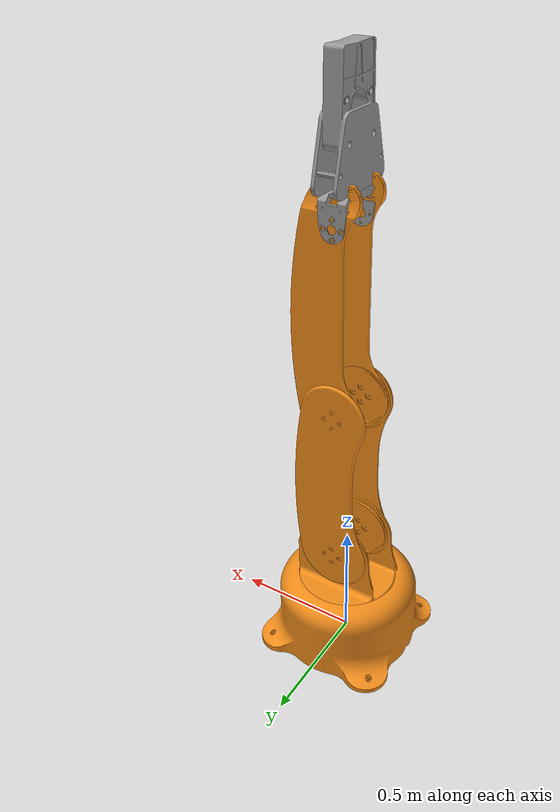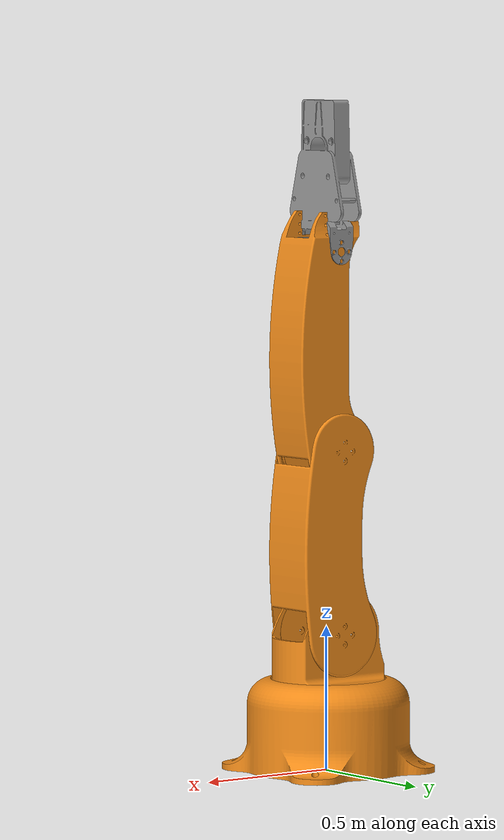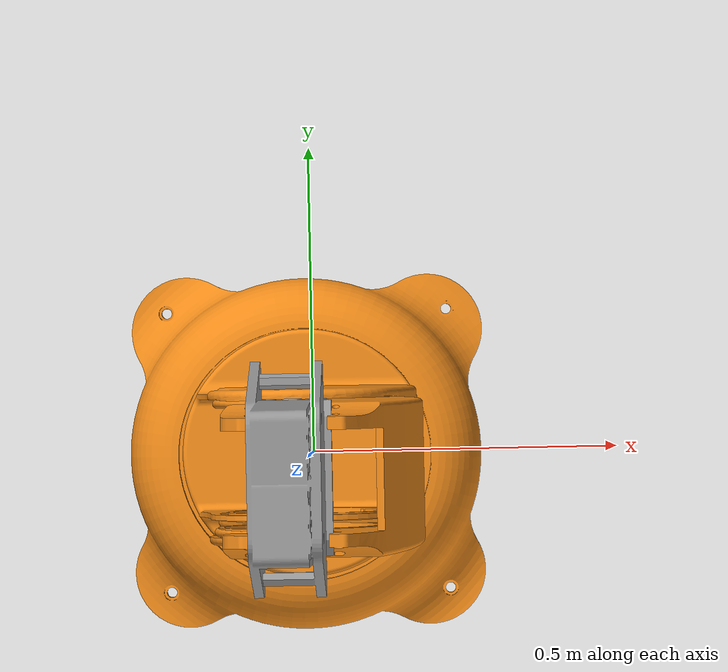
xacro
<?xml version="1.0" encoding="UTF-8"?>

<robot name="my_robot" xmlns:xacro="http://www.ros.org/wiki/xacro">

    <xacro:include filename="$(find my_robot_description)/urdf/links_joints.xacro"/>

    <xacro:m_link_base name="base_link" origin_rpy="0 0 0" origin_xyz="0 0 0.15" size="0.6 0.6 0.3" mass="1" ixx="0"
                       ixy="0" ixz="0" iyy="0" iyz="0" izz="0"/>

    <link name="world">

    </link>
    <joint name="dummy_joint" type="fixed">
        <origin xyz="0 0 0" rpy="0 0 0"/>
        <parent link="world"/>
        <child link="base_link"/>
    </joint>

    <xacro:m_link_plate name="link_01" origin_xyz="0 0 0.05 " origin_rpy="0 0 0" radius="0.2" length="0.1" mass="0.01"
                        ixx="13.235" ixy="0" ixz="0" iyy="13.235" iyz="0" izz="9.655"/>
    <xacro:m_link1 name="link_02" origin_xyz="0 0 0.31" origin_rpy="0 0 0" radius="0.08" length="0.62" mass="0.01"
                   ixx="12.679" ixy="0" ixz="0" iyy="12.679" iyz="0" izz="0.651"/>
    <xacro:m_link2 name="link_03" origin_xyz="0 0 0.31 " origin_rpy="0 0 0" radius="0.08" length="0.62" mass="0.01"
                   ixx="12.679" ixy="0" ixz="0" iyy="12.679" iyz="0" izz="0.651"/>
    <xacro:m_link3 name="link_04" origin_xyz="0 0 0.25 " origin_rpy="0 0 0" radius="0.05" length="0.5" mass="0.01"
                   ixx="12.679" ixy="0" ixz="0" iyy="12.679" iyz="0" izz="0.651"/>
    <xacro:m_link_sphere name="link_05" origin_xyz="0 0 0 " origin_rpy="0 0 0" radius="0.05" mass="0.01" ixx="12.679"
                         ixy="0" ixz="0" iyy="12.679" iyz="0" izz="0.651"/>
    <xacro:m_link_end_effector name="link_06" origin_xyz="0 0 0 " origin_rpy="0 0 0" radius="0.05" mass="0.01" ixx="12.679"
                         ixy="0" ixz="0" iyy="12.679" iyz="0" izz="0.651"/>

    <xacro:m_joint_revolute name="base_link_link_01" type="revolute" axis_xyz="0 0 1" origin_rpy="0 0 0" origin_xyz="0 0 0.3"
                   parent="base_link" child="link_01" lower="-3.14" upper="3.14"/>
    <xacro:m_joint_revolute name="link_01_link_02" type="revolute" axis_xyz="0 1 0" origin_rpy="0 0 0" origin_xyz="0 0 0.18"
                   parent="link_01" child="link_02" lower="-2.094" upper="0"/>
    <xacro:m_joint_revolute name="link_02_link_03" type="revolute" axis_xyz="0 1 0" origin_rpy="0 0 0" origin_xyz="0 0 0.63"
                   parent="link_02" child="link_03" lower="-2.094" upper="0"/>
    <xacro:m_joint_revolute name="link_03_link_04" type="revolute" axis_xyz="0 1 0" origin_rpy="0 0 0" origin_xyz="0 0 0.65"
                   parent="link_03" child="link_04" lower="-1.57" upper="1.57"/>
    <xacro:m_joint_revolute_without_controller name="link_02_link_05" type="revolute" axis_xyz="0 1 0" origin_rpy="0 0 0" origin_xyz="0 0 0.62"
                   parent="link_02" child="link_05" lower="0" upper="0" />
    <xacro:m_joint_revolute_without_controller name="link_03_link_06" type="revolute" axis_xyz="0 1 0" origin_rpy="0 0 0" origin_xyz="0 0 0.5"
                   parent="link_04" child="link_06" lower="0" upper="0"/>

    <gazebo>
        <plugin name="gazebo_ros_control" filename="libgazebo_ros_control.so">
        </plugin>

    </gazebo>
    <gazebo reference="base_link">
        <material>Gazebo/Orange</material>
    </gazebo>
    <gazebo reference="link_01">
        <material>Gazebo/Orange</material>
    </gazebo>
    <gazebo reference="link_02">
        <material>Gazebo/Orange</material>
    </gazebo>
    <gazebo reference="link_03">
        <material>Gazebo/Orange</material>
    </gazebo>
    <gazebo reference="link_04">
        <material>Gazebo/Gray</material>
    </gazebo>
</robot>

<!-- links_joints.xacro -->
<robot xmlns:xacro="http://www.ros.org/wiki/xacro">

    <xacro:macro name="m_joint_revolute" params="name type axis_xyz origin_rpy origin_xyz parent child lower upper">
        <joint name="${name}" type="${type}">
            <axis xyz="${axis_xyz}"/>
            <limit effort="1000.0" lower="${lower}" upper="${upper}" velocity="1"/>
            <origin rpy="${origin_rpy}" xyz="${origin_xyz}"/>
            <parent link="${parent}"/>
            <child link="${child}"/>
        </joint>

        <transmission name="trans_${name}">
            <type>transmission_interface/SimpleTransmission</type>
            <joint name="${name}">
                <hardwareInterface>hardware_interface/EffortJointInterface</hardwareInterface>
            </joint>
            <actuator name="motor_${name}">
                <hardwareInterface>hardware_interface/EffortJointInterface</hardwareInterface>
                <mechanicalReduction>1</mechanicalReduction>
            </actuator>
        </transmission>
    </xacro:macro>

        <xacro:macro name="m_joint_revolute_without_controller" params="name type axis_xyz origin_rpy origin_xyz parent child lower upper">
        <joint name="${name}" type="${type}">
            <axis xyz="${axis_xyz}"/>
            <limit effort="1000.0" lower="${lower}" upper="${upper}" velocity="1"/>
            <origin rpy="${origin_rpy}" xyz="${origin_xyz}"/>
            <parent link="${parent}"/>
            <child link="${child}"/>
        </joint>

    </xacro:macro>

    <xacro:macro name="m_joint_fixed" params="name type axis_xyz origin_rpy origin_xyz parent child">
        <joint name="${name}" type="${type}">
            <axis xyz="${axis_xyz}"/>
            <origin rpy="${origin_rpy}" xyz="${origin_xyz}"/>
            <parent link="${parent}"/>
            <child link="${child}"/>
        </joint>
    </xacro:macro>

    <xacro:macro name="m_link_cylinder" params="name origin_xyz origin_rpy radius length mass ixx ixy ixz iyy iyz izz">
        <link name="${name}">

            <inertial>
                <origin xyz="${origin_xyz}" rpy="${origin_rpy}"/>
                <mass value="${mass}"/>
                <inertia ixx="${ixx}" ixy="${ixy}" ixz="${ixz}" iyy="${iyy}" iyz="${iyz}" izz="${izz}"/>
            </inertial>

            <collision>
                <origin xyz="${origin_xyz}" rpy="${origin_rpy}"/>
                <geometry>
                    <cylinder radius="${radius}" length="${length}"/>
                </geometry>
            </collision>

            <visual>
                <origin rpy="${origin_rpy}" xyz="${origin_xyz}"/>
                <geometry>

                    <cylinder radius="${radius}" length="${length}"/>
                </geometry>
            </visual>
        </link>
    </xacro:macro>

    <xacro:macro name="m_link1" params="name origin_xyz origin_rpy radius length mass ixx ixy ixz iyy iyz izz">
        <link name="${name}">

            <inertial>
                <origin xyz="${origin_xyz}" rpy="${origin_rpy}"/>
                <mass value="${mass}"/>
                <inertia ixx="${ixx}" ixy="${ixy}" ixz="${ixz}" iyy="${iyy}" iyz="${iyz}" izz="${izz}"/>
            </inertial>

            <collision>
                <origin xyz="${origin_xyz}" rpy="${origin_rpy}"/>
                <geometry>
                    <cylinder radius="${radius}" length="${length}"/>
                </geometry>
            </collision>

            <visual>
                <origin rpy="1.57 1.57 0" xyz="-0.14 0.11 0.76"/>
                <geometry>
                    <mesh scale="0.004 0.004 0.004" filename="package://my_robot_description/meshes/link1.STL"/>
                </geometry>
            </visual>
        </link>
    </xacro:macro>

    <xacro:macro name="m_link2" params="name origin_xyz origin_rpy radius length mass ixx ixy ixz iyy iyz izz">
        <link name="${name}">

            <inertial>
                <origin xyz="${origin_xyz}" rpy="${origin_rpy}"/>
                <mass value="${mass}"/>
                <inertia ixx="${ixx}" ixy="${ixy}" ixz="${ixz}" iyy="${iyy}" iyz="${iyz}" izz="${izz}"/>
            </inertial>

            <collision>
                <origin xyz="${origin_xyz}" rpy="${origin_rpy}"/>
                <geometry>
                    <cylinder radius="${radius}" length="${length}"/>
                </geometry>
            </collision>

            <visual>
                <origin rpy="1.57 1.57 0" xyz="-0.12 0.1 0.82"/>
                <geometry>
                    <mesh scale="0.004 0.004 0.004" filename="package://my_robot_description/meshes/link2.STL"/>
                </geometry>
            </visual>
        </link>
    </xacro:macro>

    <xacro:macro name="m_link3" params="name origin_xyz origin_rpy radius length mass ixx ixy ixz iyy iyz izz">
        <link name="${name}">

            <inertial>
                <origin xyz="${origin_xyz}" rpy="${origin_rpy}"/>
                <mass value="${mass}"/>
                <inertia ixx="${ixx}" ixy="${ixy}" ixz="${ixz}" iyy="${iyy}" iyz="${iyz}" izz="${izz}"/>
            </inertial>

            <collision>
                <origin xyz="${origin_xyz}" rpy="${origin_rpy}"/>
                <geometry>
                    <cylinder radius="${radius}" length="${length}"/>
                </geometry>
            </collision>

            <visual>
                <origin rpy="1.57 1.57 0" xyz="-0.04 0.15 0.55"/>
                <geometry>
                    <mesh scale="0.004 0.004 0.004" filename="package://my_robot_description/meshes/grab.STL"/>
                </geometry>
            </visual>
        </link>
    </xacro:macro>

    <xacro:macro name="m_link_base" params="name origin_xyz origin_rpy size mass ixx ixy ixz iyy iyz izz">
        <link name="${name}">

            <inertial>
                <origin xyz="${origin_xyz}" rpy="${origin_rpy}"/>
                <mass value="${mass}"/>
                <inertia ixx="${ixx}" ixy="${ixy}" ixz="${ixz}" iyy="${iyy}" iyz="${iyz}" izz="${izz}"/>
            </inertial>

            <collision>
                <origin xyz="${origin_xyz}" rpy="${origin_rpy}"/>
                <geometry>
                    <box size="${size}"/>
                </geometry>
            </collision>

            <visual>
                <origin rpy="1.57 0 -1.57" xyz="0.28 0.29 0.0"/>
                <geometry>
                    <mesh scale="0.004 0.004 0.004" filename="package://my_robot_description/meshes/base.STL"/>

                </geometry>
            </visual>
        </link>
    </xacro:macro>

    <xacro:macro name="m_link_plate" params="name origin_xyz origin_rpy radius length mass ixx ixy ixz iyy iyz izz">
        <link name="${name}">

            <inertial>
                <origin xyz="${origin_xyz}" rpy="${origin_rpy}"/>
                <mass value="${mass}"/>
                <inertia ixx="${ixx}" ixy="${ixy}" ixz="${ixz}" iyy="${iyy}" iyz="${iyz}" izz="${izz}"/>
            </inertial>

            <collision>
                <origin xyz="${origin_xyz}" rpy="${origin_rpy}"/>
                <geometry>
                    <cylinder radius="${radius}" length="${length}"/>
                </geometry>
            </collision>

            <visual>
                <origin rpy="1.57 0 -1.57" xyz="0.19 0.20 0.0"/>
                <geometry>
                    <mesh scale="0.004 0.004 0.004" filename="package://my_robot_description/meshes/plate.STL"/>
                </geometry>
            </visual>
        </link>
    </xacro:macro>

    <xacro:macro name="m_link_sphere" params="name origin_xyz origin_rpy radius mass ixx ixy ixz iyy iyz izz">
        <link name="${name}">

            <inertial>
                <origin xyz="${origin_xyz}" rpy="${origin_rpy}"/>
                <mass value="${mass}"/>
                <inertia ixx="${ixx}" ixy="${ixy}" ixz="${ixz}" iyy="${iyy}" iyz="${iyz}" izz="${izz}"/>
            </inertial>

        </link>
    </xacro:macro>

        <xacro:macro name="m_link_end_effector" params="name origin_xyz origin_rpy radius mass ixx ixy ixz iyy iyz izz">
        <link name="${name}">

            <inertial>
                <origin xyz="${origin_xyz}" rpy="${origin_rpy}"/>
                <mass value="${mass}"/>
                <inertia ixx="${ixx}" ixy="${ixy}" ixz="${ixz}" iyy="${iyy}" iyz="${iyz}" izz="${izz}"/>
            </inertial>

            <collision>
                <origin xyz="${origin_xyz}" rpy="${origin_rpy}"/>
                <geometry>
                    <sphere radius="${radius}"/>
                </geometry>
            </collision>

        </link>
    </xacro:macro>

    <xacro:macro name="m_link_box" params="name origin_xyz origin_rpy size mass ixx ixy ixz iyy iyz izz">
        <link name="${name}">

            <inertial>
                <origin xyz="${origin_xyz}" rpy="${origin_rpy}"/>
                <mass value="${mass}"/>
                <inertia ixx="${ixx}" ixy="${ixy}" ixz="${ixz}" iyy="${iyy}" iyz="${iyz}" izz="${izz}"/>
            </inertial>

            <collision>
                <origin xyz="${origin_xyz}" rpy="${origin_rpy}"/>
                <geometry>
                    <box size="${size}"/>
                </geometry>
            </collision>

            <visual>
                <origin rpy="${origin_rpy}" xyz="${origin_xyz}"/>
                <geometry>
                    <box size="0.6 0.6 1.7"/>
                </geometry>
            </visual>
        </link>
    </xacro:macro>

    <xacro:macro name="m_link_button" params="name origin_xyz origin_rpy size mass ixx ixy ixz iyy iyz izz">
        <link name="${name}">

            <inertial>
                <origin xyz="${origin_xyz}" rpy="${origin_rpy}"/>
                <mass value="${mass}"/>
                <inertia ixx="${ixx}" ixy="${ixy}" ixz="${ixz}" iyy="${iyy}" iyz="${iyz}" izz="${izz}"/>
            </inertial>

            <collision>
                <origin xyz="${origin_xyz}" rpy="${origin_rpy}"/>
                <geometry>
                    <box size="${size}"/>
                </geometry>
            </collision>

            <visual>
                <origin rpy="${origin_rpy}" xyz="${origin_xyz}"/>
                <geometry>
                    <box size="${size}"/>
                </geometry>
            </visual>

            <sensor name="button_force_sensor" type="force">
                <always_on>true</always_on>
                <visualize>true</visualize>
                <contact>
                    <collision>button_collision</collision>
                </contact>
                <update_rate>30</update_rate>
            </sensor>

        </link>
    </xacro:macro>

    <xacro:macro name="m_link_goal" params="name origin_xyz origin_rpy radius mass ixx ixy ixz iyy iyz izz">
        <link name="${name}">

            <inertial>
                <origin xyz="${origin_xyz}" rpy="${origin_rpy}"/>
                <mass value="${mass}"/>
                <inertia ixx="${ixx}" ixy="${ixy}" ixz="${ixz}" iyy="${iyy}" iyz="${iyz}" izz="${izz}"/>
            </inertial>

            <visual>
                <origin rpy="${origin_rpy}" xyz="${origin_xyz}"/>
                <geometry>
                    <sphere radius="${radius}"/>
                </geometry>
            </visual>
        </link>
    </xacro:macro>

    <xacro:macro name="m_link_wall" params="name origin_xyz origin_rpy mass ixx ixy ixz iyy iyz izz">
        <link name="${name}">
            <inertial>
                <origin xyz="${origin_xyz}" rpy="${origin_rpy}"/>
                <mass value="${mass}"/>
                <inertia ixx="${ixx}" ixy="${ixy}" ixz="${ixz}" iyy="${iyy}" iyz="${iyz}" izz="${izz}"/>
            </inertial>

            <collision>
                <origin xyz="${origin_xyz}" rpy="${origin_rpy}"/>
                <geometry>
                    <mesh scale="0.01 0.01 0.01" filename="package://my_robot_description/meshes/wall.STL"/>

                </geometry>
            </collision>

            <visual>
                <origin rpy="${origin_rpy}" xyz="${origin_xyz}"/>
                <geometry>
                    <mesh scale="0.02 0.02 0.01" filename="package://my_robot_description/meshes/wall.STL"/>

                </geometry>
            </visual>
        </link>
    </xacro:macro>

</robot>
